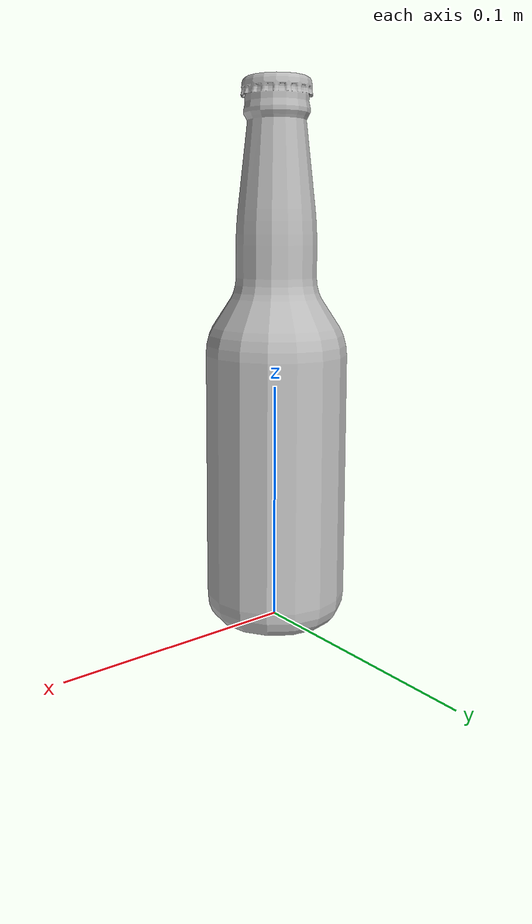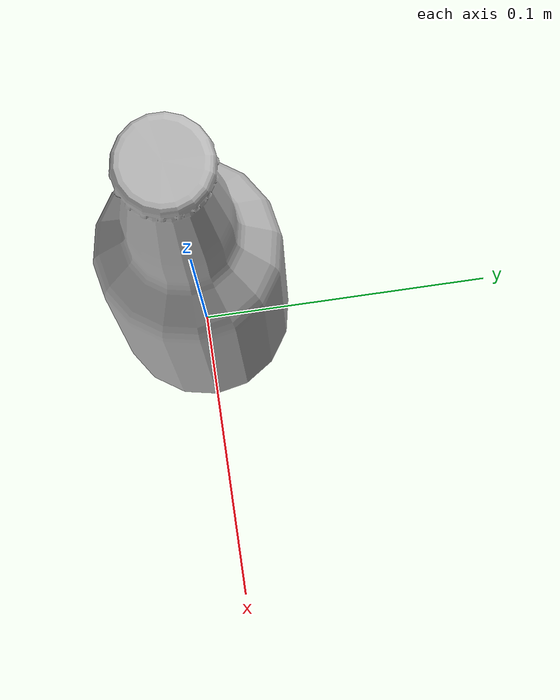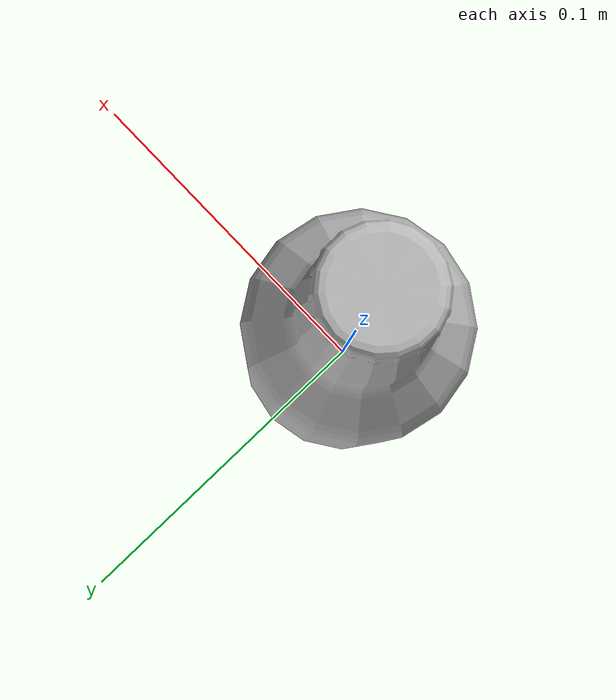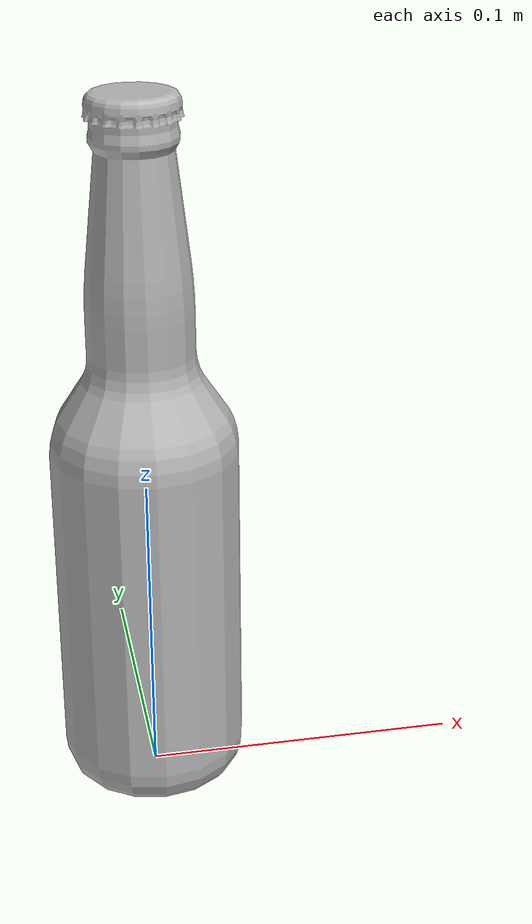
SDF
<?xml version="1.0" ?>
<sdf version="1.6" xmlns:drake="drake.mit.edu">
  <model name="beer_bottle">
    <link name="link_beer_bottle">
      <inertial>
        <pose frame="">0.0000e+00 0.0000e+00 8.3000e-02 0.0000e+00 0.0000e+00 0.0000e+00</pose>
        <mass>0.887</mass>
        <inertia>
          <ixx>0.003</ixx>
          <ixy>0</ixy>
          <ixz>0</ixz>
          <iyy>0.003</iyy>
          <iyz>0</iyz>
          <izz>0.001</izz>
        </inertia>
      </inertial>
      <visual name="link_beer_bottle">
        <pose frame="">0.0000e+00 0.0000e+00 0.0000e+00 0.0000e+00 0.0000e+00 0.0000e+00</pose>
        <geometry>
          <mesh>
            <uri>meshes/link_beer_bottle.obj</uri>
            <scale>1.0000e+00 1.0000e+00 1.0000e+00</scale>
          </mesh>
        </geometry>
        <material>
          <drake:diffuse_map>meshes/link_beer_bottle_Bake1_pbr_diffuse.png</drake:diffuse_map>
          <drake:normal_map>meshes/link_beer_bottle_Bake1_pbr_normal.png</drake:normal_map>
          <drake:roughness_map>meshes/link_beer_bottle_Bake1_pbr_roughness.png</drake:roughness_map>
          <drake:metalness_map>meshes/link_beer_bottle_Bake1_pbr_metalness.png</drake:metalness_map>
          <drake:alpha_map>meshes/link_beer_bottle_Bake1_pbr_alpha.png</drake:alpha_map>
        </material>
      </visual>
      <collision name="Cylinder">
        <pose frame="">0.0000e+00 0.0000e+00 0.0000e+00 0.0000e+00 0.0000e+00 0.0000e+00</pose>
        <geometry>
          <mesh>
            <uri>meshes/Cylinder.obj</uri>
            <scale>1.0000e+00 1.0000e+00 1.0000e+00</scale>
            <drake:declare_convex/>
          </mesh>
        </geometry>
      </collision>
      <collision name="Cylinder.001">
        <pose frame="">0.0000e+00 0.0000e+00 0.0000e+00 0.0000e+00 0.0000e+00 0.0000e+00</pose>
        <geometry>
          <mesh>
            <uri>meshes/Cylinder.001.obj</uri>
            <scale>1.0000e+00 1.0000e+00 1.0000e+00</scale>
            <drake:declare_convex/>
          </mesh>
        </geometry>
      </collision>
    </link>
  </model>
</sdf>
